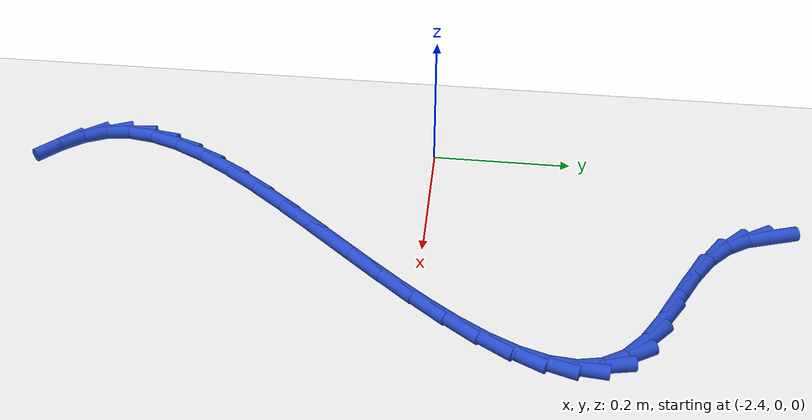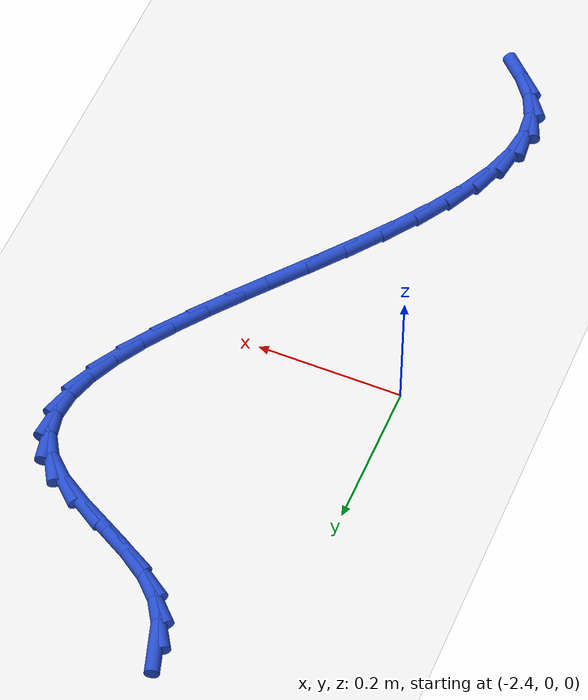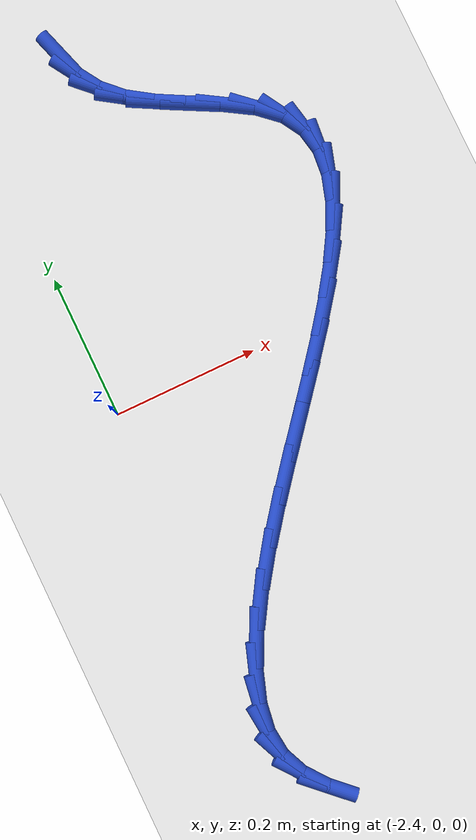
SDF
<sdf version="1.6">
 <world name="default">
  <model name="ground_plane">
   <static>1</static>
   <link name="link">
    <collision name="collision">
     <geometry><plane><normal>0 0 1</normal><size>100 100</size></plane></geometry>
     <surface><friction><ode><mu>100</mu><mu2>50</mu2></ode></friction></surface>
    </collision>
    <visual name="visual">
     <cast_shadows>0</cast_shadows>
     <geometry><plane><normal>0 0 1</normal><size>100 100</size></plane></geometry>
     <material>
      <script><uri>file://media/materials/scripts/gazebo.material</uri><name>Gazebo/WhiteGlow</name></script>
     </material>
    </visual>
   </link>
  </model>
  <model name="line">
   <link name="link_76">
    <pose>-2.263206438146801 0.4681929251007407 0.01 0 1.57 -1.2673940128376668</pose>
    <collision name="collision">
     <geometry><cylinder><radius>0.01</radius><length>0.08</length></cylinder></geometry>
    </collision>
    <visual name="visual">
     <material>
      <script><name>Gazebo/Blue</name><uri>file://media/materials/scripts/gazebo.material</uri></script>
     </material>
     <geometry><cylinder><radius>0.01</radius><length>0.08</length></cylinder></geometry>
    </visual>
   </link>
   <link name="link_77">
    <pose>-2.253489912031844 0.4371564602925593 0.01 0 1.57 -1.0154603849644182</pose>
    <collision name="collision">
     <geometry><cylinder><radius>0.01</radius><length>0.08</length></cylinder></geometry>
    </collision>
    <visual name="visual">
     <material>
      <script><name>Gazebo/Blue</name><uri>file://media/materials/scripts/gazebo.material</uri></script>
     </material>
     <geometry><cylinder><radius>0.01</radius><length>0.08</length></cylinder></geometry>
    </visual>
   </link>
   <link name="link_78">
    <pose>-2.2357260282747897 0.4085267884566697 0.01 0 1.57 -0.7780381504884086</pose>
    <collision name="collision">
     <geometry><cylinder><radius>0.01</radius><length>0.08</length></cylinder></geometry>
    </collision>
    <visual name="visual">
     <material>
      <script><name>Gazebo/Blue</name><uri>file://media/materials/scripts/gazebo.material</uri></script>
     </material>
     <geometry><cylinder><radius>0.01</radius><length>0.08</length></cylinder></geometry>
    </visual>
   </link>
   <link name="link_79">
    <pose>-2.2092872227495075 0.3824743263150992 0.01 0 1.57 -0.5880348266374434</pose>
    <collision name="collision">
     <geometry><cylinder><radius>0.01</radius><length>0.08</length></cylinder></geometry>
    </collision>
    <visual name="visual">
     <material>
      <script><name>Gazebo/Blue</name><uri>file://media/materials/scripts/gazebo.material</uri></script>
     </material>
     <geometry><cylinder><radius>0.01</radius><length>0.08</length></cylinder></geometry>
    </visual>
   </link>
   <link name="link_80">
    <pose>-2.1740930039251407 0.35900987563430903 0.01 0 1.57 -0.49451021178018933</pose>
    <collision name="collision">
     <geometry><cylinder><radius>0.01</radius><length>0.08</length></cylinder></geometry>
    </collision>
    <visual name="visual">
     <material>
      <script><name>Gazebo/Blue</name><uri>file://media/materials/scripts/gazebo.material</uri></script>
     </material>
     <geometry><cylinder><radius>0.01</radius><length>0.08</length></cylinder></geometry>
    </visual>
   </link>
   <link name="link_81">
    <pose>-2.1335229956590567 0.3371347082413739 0.01 0 1.57 -0.4841894564385519</pose>
    <collision name="collision">
     <geometry><cylinder><radius>0.01</radius><length>0.08</length></cylinder></geometry>
    </collision>
    <visual name="visual">
     <material>
      <script><name>Gazebo/Blue</name><uri>file://media/materials/scripts/gazebo.material</uri></script>
     </material>
     <geometry><cylinder><radius>0.01</radius><length>0.08</length></cylinder></geometry>
    </visual>
   </link>
   <link name="link_82">
    <pose>-2.092305661505406 0.3154565558918529 0.01 0 1.57 -0.5521068001029915</pose>
    <collision name="collision">
     <geometry><cylinder><radius>0.01</radius><length>0.08</length></cylinder></geometry>
    </collision>
    <visual name="visual">
     <material>
      <script><name>Gazebo/Blue</name><uri>file://media/materials/scripts/gazebo.material</uri></script>
     </material>
     <geometry><cylinder><radius>0.01</radius><length>0.08</length></cylinder></geometry>
    </visual>
   </link>
   <link name="link_83">
    <pose>-2.0551725250012054 0.2925822575548009 0.01 0 1.57 -0.7317766933355664</pose>
    <collision name="collision">
     <geometry><cylinder><radius>0.01</radius><length>0.08</length></cylinder></geometry>
    </collision>
    <visual name="visual">
     <material>
      <script><name>Gazebo/Blue</name><uri>file://media/materials/scripts/gazebo.material</uri></script>
     </material>
     <geometry><cylinder><radius>0.01</radius><length>0.08</length></cylinder></geometry>
    </visual>
   </link>
   <link name="link_84">
    <pose>-2.026828985106911 0.2671262941591865 0.01 0 1.57 -1.0406385887673104</pose>
    <collision name="collision">
     <geometry><cylinder><radius>0.01</radius><length>0.08</length></cylinder></geometry>
    </collision>
    <visual name="visual">
     <material>
      <script><name>Gazebo/Blue</name><uri>file://media/materials/scripts/gazebo.material</uri></script>
     </material>
     <geometry><cylinder><radius>0.01</radius><length>0.08</length></cylinder></geometry>
    </visual>
   </link>
   <link name="link_85">
    <pose>-2.009934084226486 0.23830174675795637 0.01 0 1.57 -1.3770750795230589</pose>
    <collision name="collision">
     <geometry><cylinder><radius>0.01</radius><length>0.08</length></cylinder></geometry>
    </collision>
    <visual name="visual">
     <material>
      <script><name>Gazebo/Blue</name><uri>file://media/materials/scripts/gazebo.material</uri></script>
     </material>
     <geometry><cylinder><radius>0.01</radius><length>0.08</length></cylinder></geometry>
    </visual>
   </link>
   <link name="link_86">
    <pose>-2.0036638860660094 0.20634053716949982 0.01 0 1.57 1.4792584762470853</pose>
    <collision name="collision">
     <geometry><cylinder><radius>0.01</radius><length>0.08</length></cylinder></geometry>
    </collision>
    <visual name="visual">
     <material>
      <script><name>Gazebo/Blue</name><uri>file://media/materials/scripts/gazebo.material</uri></script>
     </material>
     <geometry><cylinder><radius>0.01</radius><length>0.08</length></cylinder></geometry>
    </visual>
   </link>
   <link name="link_87">
    <pose>-2.0068552768743837 0.17157380338607922 0.01 0 1.57 1.2715356844577101</pose>
    <collision name="collision">
     <geometry><cylinder><radius>0.01</radius><length>0.08</length></cylinder></geometry>
    </collision>
    <visual name="visual">
     <material>
      <script><name>Gazebo/Blue</name><uri>file://media/materials/scripts/gazebo.material</uri></script>
     </material>
     <geometry><cylinder><radius>0.01</radius><length>0.08</length></cylinder></geometry>
    </visual>
   </link>
   <link name="link_88">
    <pose>-2.0183451429005106 0.13433268339995652 0.01 0 1.57 1.1290553304854307</pose>
    <collision name="collision">
     <geometry><cylinder><radius>0.01</radius><length>0.08</length></cylinder></geometry>
    </collision>
    <visual name="visual">
     <material>
      <script><name>Gazebo/Blue</name><uri>file://media/materials/scripts/gazebo.material</uri></script>
     </material>
     <geometry><cylinder><radius>0.01</radius><length>0.08</length></cylinder></geometry>
    </visual>
   </link>
   <link name="link_89">
    <pose>-2.0369703703932913 0.09494831520339521 0.01 0 1.57 1.032528765280392</pose>
    <collision name="collision">
     <geometry><cylinder><radius>0.01</radius><length>0.08</length></cylinder></geometry>
    </collision>
    <visual name="visual">
     <material>
      <script><name>Gazebo/Blue</name><uri>file://media/materials/scripts/gazebo.material</uri></script>
     </material>
     <geometry><cylinder><radius>0.01</radius><length>0.08</length></cylinder></geometry>
    </visual>
   </link>
   <link name="link_90">
    <pose>-2.0615678456016284 0.053751836788657394 0.01 0 1.57 0.9674618010323307</pose>
    <collision name="collision">
     <geometry><cylinder><radius>0.01</radius><length>0.08</length></cylinder></geometry>
    </collision>
    <visual name="visual">
     <material>
      <script><name>Gazebo/Blue</name><uri>file://media/materials/scripts/gazebo.material</uri></script>
     </material>
     <geometry><cylinder><radius>0.01</radius><length>0.08</length></cylinder></geometry>
    </visual>
   </link>
   <link name="link_91">
    <pose>-2.090974454774424 0.011074386148005683 0.01 0 1.57 0.924640395613484</pose>
    <collision name="collision">
     <geometry><cylinder><radius>0.01</radius><length>0.08</length></cylinder></geometry>
    </collision>
    <visual name="visual">
     <material>
      <script><name>Gazebo/Blue</name><uri>file://media/materials/scripts/gazebo.material</uri></script>
     </material>
     <geometry><cylinder><radius>0.01</radius><length>0.08</length></cylinder></geometry>
    </visual>
   </link>
   <link name="link_92">
    <pose>-2.124027084160581 -0.03275289872629834 0.01 0 1.57 0.8985357148670206</pose>
    <collision name="collision">
     <geometry><cylinder><radius>0.01</radius><length>0.08</length></cylinder></geometry>
    </collision>
    <visual name="visual">
     <material>
      <script><name>Gazebo/Blue</name><uri>file://media/materials/scripts/gazebo.material</uri></script>
     </material>
     <geometry><cylinder><radius>0.01</radius><length>0.08</length></cylinder></geometry>
    </visual>
   </link>
   <link name="link_93">
    <pose>-2.159562620008999 -0.07739887984199034 0.01 0 1.57 0.8860246420162841</pose>
    <collision name="collision">
     <geometry><cylinder><radius>0.01</radius><length>0.08</length></cylinder></geometry>
    </collision>
    <visual name="visual">
     <material>
      <script><name>Gazebo/Blue</name><uri>file://media/materials/scripts/gazebo.material</uri></script>
     </material>
     <geometry><cylinder><radius>0.01</radius><length>0.08</length></cylinder></geometry>
    </visual>
   </link>
   <link name="link_94">
    <pose>-2.1964179485685826 -0.1225324192068086 0.01 0 1.57 0.8856412838203722</pose>
    <collision name="collision">
     <geometry><cylinder><radius>0.01</radius><length>0.08</length></cylinder></geometry>
    </collision>
    <visual name="visual">
     <material>
      <script><name>Gazebo/Blue</name><uri>file://media/materials/scripts/gazebo.material</uri></script>
     </material>
     <geometry><cylinder><radius>0.01</radius><length>0.08</length></cylinder></geometry>
    </visual>
   </link>
   <link name="link_95">
    <pose>-2.2334299560882322 -0.16782237882849063 0.01 0 1.57 0.8972272067064487</pose>
    <collision name="collision">
     <geometry><cylinder><radius>0.01</radius><length>0.08</length></cylinder></geometry>
    </collision>
    <visual name="visual">
     <material>
      <script><name>Gazebo/Blue</name><uri>file://media/materials/scripts/gazebo.material</uri></script>
     </material>
     <geometry><cylinder><radius>0.01</radius><length>0.08</length></cylinder></geometry>
    </visual>
   </link>
   <link name="link_96">
    <pose>-2.269435528816849 -0.2129376207147737 0.01 0 1.57 0.9218801539330598</pose>
    <collision name="collision">
     <geometry><cylinder><radius>0.01</radius><length>0.08</length></cylinder></geometry>
    </collision>
    <visual name="visual">
     <material>
      <script><name>Gazebo/Blue</name><uri>file://media/materials/scripts/gazebo.material</uri></script>
     </material>
     <geometry><cylinder><radius>0.01</radius><length>0.08</length></cylinder></geometry>
    </visual>
   </link>
   <link name="link_97">
    <pose>-2.303271553003338 -0.25754700687339555 0.01 0 1.57 0.9621788176286326</pose>
    <collision name="collision">
     <geometry><cylinder><radius>0.01</radius><length>0.08</length></cylinder></geometry>
    </collision>
    <visual name="visual">
     <material>
      <script><name>Gazebo/Blue</name><uri>file://media/materials/scripts/gazebo.material</uri></script>
     </material>
     <geometry><cylinder><radius>0.01</radius><length>0.08</length></cylinder></geometry>
    </visual>
   </link>
   <link name="link_98">
    <pose>-2.3337749148965994 -0.3013193993120943 0.01 0 1.57 1.0227315796059617</pose>
    <collision name="collision">
     <geometry><cylinder><radius>0.01</radius><length>0.08</length></cylinder></geometry>
    </collision>
    <visual name="visual">
     <material>
      <script><name>Gazebo/Blue</name><uri>file://media/materials/scripts/gazebo.material</uri></script>
     </material>
     <geometry><cylinder><radius>0.01</radius><length>0.08</length></cylinder></geometry>
    </visual>
   </link>
   <link name="link_99">
    <pose>-2.359782500745534 -0.3439236600386057 0.01 0 1.57 1.111122996486087</pose>
    <collision name="collision">
     <geometry><cylinder><radius>0.01</radius><length>0.08</length></cylinder></geometry>
    </collision>
    <visual name="visual">
     <material>
      <script><name>Gazebo/Blue</name><uri>file://media/materials/scripts/gazebo.material</uri></script>
     </material>
     <geometry><cylinder><radius>0.01</radius><length>0.08</length></cylinder></geometry>
    </visual>
   </link>
   <link name="link_100">
    <pose>-2.380131196799046 -0.38502865106066814 0.01 0 1.57 1.239107083299431</pose>
    <collision name="collision">
     <geometry><cylinder><radius>0.01</radius><length>0.08</length></cylinder></geometry>
    </collision>
    <visual name="visual">
     <material>
      <script><name>Gazebo/Blue</name><uri>file://media/materials/scripts/gazebo.material</uri></script>
     </material>
     <geometry><cylinder><radius>0.01</radius><length>0.08</length></cylinder></geometry>
    </visual>
   </link>
   <link name="link_101">
    <pose>-2.393657889306035 -0.4243032343860188 0.01 0 1.57 1.422575266205254</pose>
    <collision name="collision">
     <geometry><cylinder><radius>0.01</radius><length>0.08</length></cylinder></geometry>
    </collision>
    <visual name="visual">
     <material>
      <script><name>Gazebo/Blue</name><uri>file://media/materials/scripts/gazebo.material</uri></script>
     </material>
     <geometry><cylinder><radius>0.01</radius><length>0.08</length></cylinder></geometry>
    </visual>
   </link>
   <link name="link_102">
    <pose>-2.399199464515405 -0.46141627202239544 0.01 0 1.57 -1.4669934431751706</pose>
    <collision name="collision">
     <geometry><cylinder><radius>0.01</radius><length>0.08</length></cylinder></geometry>
    </collision>
    <visual name="visual">
     <material>
      <script><name>Gazebo/Blue</name><uri>file://media/materials/scripts/gazebo.material</uri></script>
     </material>
     <geometry><cylinder><radius>0.01</radius><length>0.08</length></cylinder></geometry>
    </visual>
   </link>
   <link name="link_103">
    <pose>-2.3955928086760583 -0.49603662597753617 0.01 0 1.57 -1.163757515722226</pose>
    <collision name="collision">
     <geometry><cylinder><radius>0.01</radius><length>0.08</length></cylinder></geometry>
    </collision>
    <visual name="visual">
     <material>
      <script><name>Gazebo/Blue</name><uri>file://media/materials/scripts/gazebo.material</uri></script>
     </material>
     <geometry><cylinder><radius>0.01</radius><length>0.08</length></cylinder></geometry>
    </visual>
   </link>
   <link name="link_104">
    <pose>-2.381851803033129 -0.527909794115842 0.01 0 1.57 -0.9123300155033913</pose>
    <collision name="collision">
     <geometry><cylinder><radius>0.01</radius><length>0.08</length></cylinder></geometry>
    </collision>
    <visual name="visual">
     <material>
      <script><name>Gazebo/Blue</name><uri>file://media/materials/scripts/gazebo.material</uri></script>
     </material>
     <geometry><cylinder><radius>0.01</radius><length>0.08</length></cylinder></geometry>
    </visual>
   </link>
   <link name="link_105">
    <pose>-2.3588817790390846 -0.5576002404310603 0.01 0 1.57 -0.7585016979795208</pose>
    <collision name="collision">
     <geometry><cylinder><radius>0.01</radius><length>0.08</length></cylinder></geometry>
    </collision>
    <visual name="visual">
     <material>
      <script><name>Gazebo/Blue</name><uri>file://media/materials/scripts/gazebo.material</uri></script>
     </material>
     <geometry><cylinder><radius>0.01</radius><length>0.08</length></cylinder></geometry>
    </visual>
   </link>
  </model>
 </world>
</sdf>
